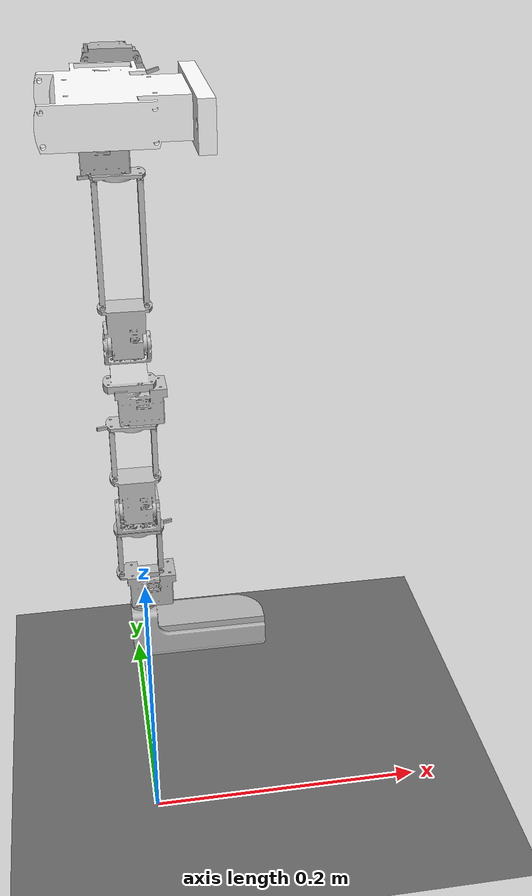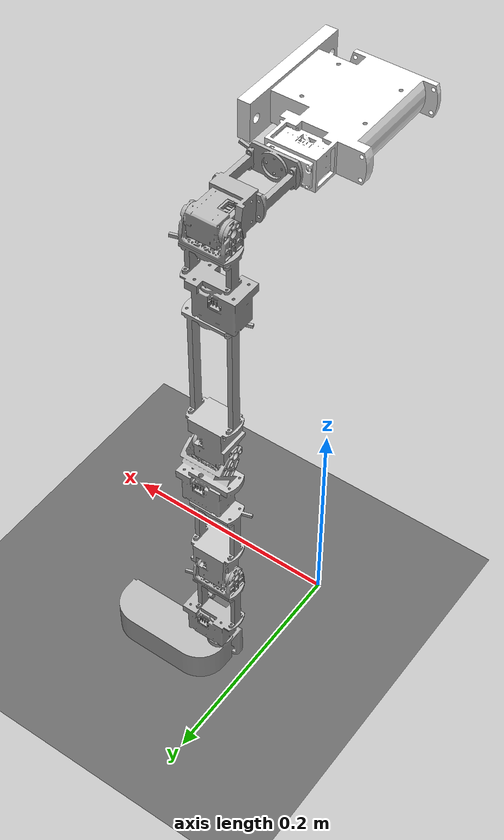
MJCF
<mujoco model="UH-v3.0 final.SLDASM right v2">
  <option iterations="50" timestep="0.001" solver="PGS" gravity="0 0 -9.81" />

  <compiler angle="radian" meshdir="meshes" eulerseq="zyx" autolimits="true" />

  <default>
    <joint limited="true" damping="0.01" armature="0.01" frictionloss="0.01" />
    <geom condim="4" contype="1" conaffinity="15" friction="0.9 0.2 0.2" solref="0.001 2" />
    <motor ctrllimited="true" />
    <equality solref="0.001 2" />
    <default class="visualgeom">
      <geom material="visualgeom" condim="1" contype="0" conaffinity="0" />
    </default>
  </default>

  <asset>
    <mesh name="base_link" content_type="model/stl" file="base_link.STL" />
    <mesh name="Link1" content_type="model/stl" file="Link1.STL" />
    <mesh name="Link2" content_type="model/stl" file="Link2.STL" />
    <mesh name="Link3" content_type="model/stl" file="Link3.STL" />
    <mesh name="Link4" content_type="model/stl" file="Link4.STL" />
    <mesh name="Link5" content_type="model/stl" file="Link5.STL" />
    <mesh name="Link6" content_type="model/stl" file="Link6.STL" />
    <mesh name="Link7" content_type="model/stl" file="Link7.STL" />
    <texture name="texplane" type="2d" builtin="checker" rgb1=".0 .0 .0" rgb2=".8 .8 .8" width="100" height="100" />
    <material name="matplane" reflectance="0." texture="texplane" texrepeat="1 1" texuniform="true" />
    <material name="visualgeom" rgba="0.5 0.9 0.2 1" />
  </asset>

  <worldbody>
    <light directional="true" diffuse="0.4 0.4 0.4" specular="0.1 0.1 0.1" pos="0 0 5.0" dir="0 0 -1" castshadow="false" />
    <light directional="true" diffuse="0.6 0.6 0.6" specular="0.2 0.2 0.2" pos="0 0 4" dir="0 0 -1" />
    <geom name="ground" type="plane" pos="0 0 0" size="100 100 0.001" quat="1 0 0 0" material="matplane" condim="3" conaffinity="15" />
    <camera name="fixed" pos="0 -3.0 1.0119779381114793" xyaxes="1 0 0 0 0 1" />
    <camera name="track" mode="trackcom" pos="0 -3.0 1.0119779381114793" xyaxes="1 0 0 0 0 1" />
    <body name="root" pos="0 0 0.5119779381114793" quat="1 0 0 0">
      <site name="imu" size="0.01" pos="0 0 0" />
      <geom type="mesh" rgba="1 1 1 1" mesh="base_link" contype="1" conaffinity="0" density="0" group="1" class="visualgeom" />
      <geom type="mesh" rgba="1 1 1 1" mesh="base_link" />
      <body name="Link1" pos="0.0038974 0.073 0.0125" quat="0.707105 -0.707108 0 0">
        <inertial pos="-8.09453e-05 -5.20288e-06 0.0499266" quat="0.715176 -0.0305417 -0.0320228 0.697542" mass="0.0247648" diaginertia="2.83047e-06 2.64501e-06 1.90588e-06" />
        <joint name="joint1" pos="0 0 0" axis="0 0 1" range="-3.14 3.14" actuatorfrcrange="-0.5 0.5" />
        <geom type="mesh" rgba="0.698039 0.698039 0.698039 1" mesh="Link1" contype="1" conaffinity="0" density="0" group="1" class="visualgeom" />
        <geom type="mesh" rgba="0.698039 0.698039 0.698039 1" mesh="Link1" />
        <body name="Link2" pos="-0.0173 0 0.068" quat="0.499998 0.5 -0.500002 -0.5">
          <inertial pos="-0.0500735 1.08473e-05 -0.012064" quat="0.999999 0.000826864 -0.00114183 4.30957e-05" mass="0.0250913" diaginertia="3.54424e-06 3.14614e-06 1.18566e-06" />
          <joint name="joint2" pos="0 0 0" axis="0 0 1" range="-3.14 3.14" actuatorfrcrange="-0.5 0.5" />
          <geom type="mesh" rgba="0.698039 0.698039 0.698039 1" mesh="Link2" contype="1" conaffinity="0" density="0" group="1" class="visualgeom" />
          <geom type="mesh" rgba="0.698039 0.698039 0.698039 1" mesh="Link2" />
          <body name="Link3" pos="-0.075 0 -0.0173" quat="0.707105 0 -0.707108 0">
            <inertial pos="0.000465713 5.59567e-05 0.0978997" quat="0.676596 0.0072946 0.0108766 0.736238" mass="0.0273651" diaginertia="6.13556e-06 5.95383e-06 1.93813e-06" />
            <joint name="joint3" pos="0 0 0" axis="0 0 1" range="-3.14 3.14" actuatorfrcrange="-0.5 0.5" />
            <geom type="mesh" rgba="0.752941 0.752941 0.752941 1" mesh="Link3" contype="1" conaffinity="0" density="0" group="1" class="visualgeom" />
            <geom type="mesh" rgba="0.752941 0.752941 0.752941 1" mesh="Link3" />
            <body name="Link4" pos="0.0173 0 0.128" quat="0.707105 0 -0.707108 0">
              <inertial pos="0.0419897 0.001272 0.0223772" quat="0.980609 0.000424977 0.0008222 0.195971" mass="0.0258918" diaginertia="3.89662e-06 3.39753e-06 1.53989e-06" />
              <joint name="joint4" pos="0 0 0" axis="0 0 -1" range="-3.14 3.14" actuatorfrcrange="-0.5 0.5" />
              <geom type="mesh" rgba="0.752941 0.752941 0.752941 1" mesh="Link4" contype="1" conaffinity="0" density="0" group="1" class="visualgeom" />
              <geom type="mesh" rgba="0.752941 0.752941 0.752941 1" mesh="Link4" />
              <body name="Link5" pos="0.065178 0 0.0173" quat="0.707105 0 0.707108 0">
                <inertial pos="-7.96593e-05 -5.12022e-06 0.0573305" quat="0.715416 -0.0244927 -0.0257573 0.697794" mass="0.0251646" diaginertia="3.01336e-06 2.82829e-06 1.90962e-06" />
                <joint name="joint5" pos="0 0 0" axis="0 0 1" range="-3.14 3.14" actuatorfrcrange="-0.5 0.5" />
                <geom type="mesh" rgba="0.752941 0.752941 0.752941 1" mesh="Link5" contype="1" conaffinity="0" density="0" group="1" class="visualgeom" />
                <geom type="mesh" rgba="0.752941 0.752941 0.752941 1" mesh="Link5" />
                <body name="Link6" pos="-0.0173 0 0.077" quat="0.707105 0 -0.707108 0">
                  <inertial pos="0.0614421 5.01523e-06 -0.0121211" quat="0.999999 -0.000827384 0.00112505 0.000338234" mass="0.0256914" diaginertia="3.548e-06 3.32688e-06 1.36857e-06" />
                  <joint name="joint6" pos="0 0 0" axis="0 0 -1" range="-3.14 3.14" actuatorfrcrange="-0.5 0.5" />
                  <geom type="mesh" rgba="0.698039 0.698039 0.698039 1" mesh="Link6" contype="1" conaffinity="0" density="0" group="1" class="visualgeom" />
                  <geom type="mesh" rgba="0.698039 0.698039 0.698039 1" mesh="Link6" />
                  <body name="Link7" pos="0.09 0 -0.0173" quat="0.707105 0 0.707108 0">
                    <inertial pos="-0.0456919 0.00159181 0.0322193" quat="0.0086423 0.717912 0.00984546 0.69601" mass="0.0603672" diaginertia="5.43713e-05 5.32329e-05 9.6083e-06" />
                    <joint name="joint7" pos="0 0 0" axis="0 0 -1" range="-3.14 3.14" actuatorfrcrange="-0.5 0.5" />
                    <geom type="mesh" rgba="0.698039 0.698039 0.698039 1" mesh="Link7" contype="1" conaffinity="0" density="0" group="1" class="visualgeom" />
                    <geom type="mesh" rgba="0.698039 0.698039 0.698039 1" mesh="Link7" />
                  </body>
                </body>
              </body>
            </body>
          </body>
        </body>
      </body>
    </body>
  </worldbody>

  <actuator>
    <motor name="joint1" joint="joint1" ctrllimited="true" ctrlrange="-0.5 0.5" gear="1" />
    <motor name="joint2" joint="joint2" ctrllimited="true" ctrlrange="-0.5 0.5" gear="1" />
    <motor name="joint3" joint="joint3" ctrllimited="true" ctrlrange="-0.5 0.5" gear="1" />
    <motor name="joint4" joint="joint4" ctrllimited="true" ctrlrange="-0.5 0.5" gear="1" />
    <motor name="joint5" joint="joint5" ctrllimited="true" ctrlrange="-0.5 0.5" gear="1" />
    <motor name="joint6" joint="joint6" ctrllimited="true" ctrlrange="-0.5 0.5" gear="1" />
    <motor name="joint7" joint="joint7" ctrllimited="true" ctrlrange="-0.5 0.5" gear="1" />
  </actuator>

  <sensor>
    <actuatorpos name="joint1_p" actuator="joint1" />
    <actuatorvel name="joint1_v" actuator="joint1" />
    <actuatorfrc name="joint1_f" actuator="joint1" noise="0.001" />
    <actuatorpos name="joint2_p" actuator="joint2" />
    <actuatorvel name="joint2_v" actuator="joint2" />
    <actuatorfrc name="joint2_f" actuator="joint2" noise="0.001" />
    <actuatorpos name="joint3_p" actuator="joint3" />
    <actuatorvel name="joint3_v" actuator="joint3" />
    <actuatorfrc name="joint3_f" actuator="joint3" noise="0.001" />
    <actuatorpos name="joint4_p" actuator="joint4" />
    <actuatorvel name="joint4_v" actuator="joint4" />
    <actuatorfrc name="joint4_f" actuator="joint4" noise="0.001" />
    <actuatorpos name="joint5_p" actuator="joint5" />
    <actuatorvel name="joint5_v" actuator="joint5" />
    <actuatorfrc name="joint5_f" actuator="joint5" noise="0.001" />
    <actuatorpos name="joint6_p" actuator="joint6" />
    <actuatorvel name="joint6_v" actuator="joint6" />
    <actuatorfrc name="joint6_f" actuator="joint6" noise="0.001" />
    <actuatorpos name="joint7_p" actuator="joint7" />
    <actuatorvel name="joint7_v" actuator="joint7" />
    <actuatorfrc name="joint7_f" actuator="joint7" noise="0.001" />
    <framequat name="orientation" objtype="site" noise="0.001" objname="imu" />
    <gyro name="angular-velocity" site="imu" noise="0.005" cutoff="34.9" />
  </sensor>
</mujoco>
